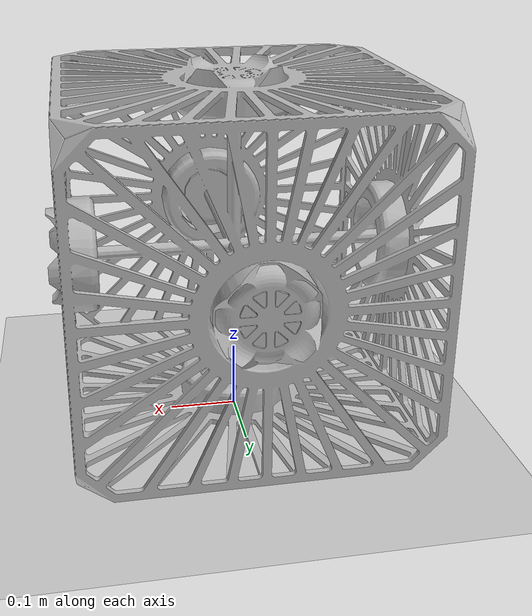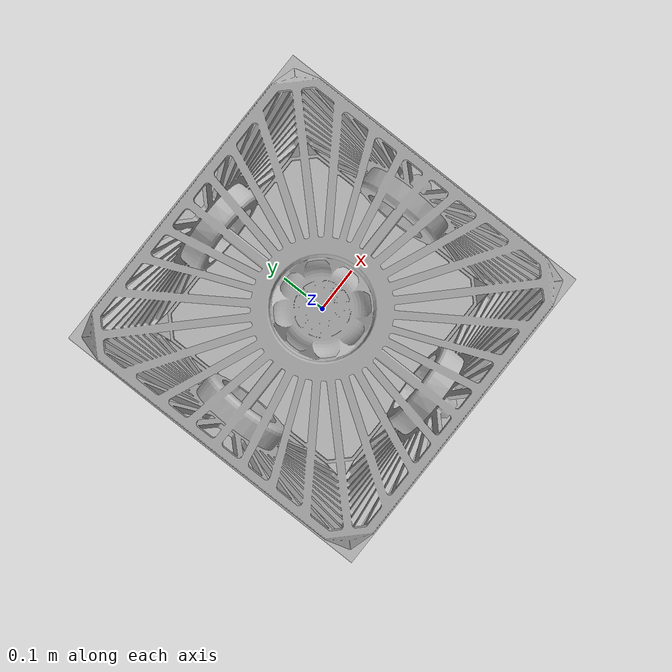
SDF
<sdf version="1.7">
 <world name="default">
  <light name="sun" type="directional">
   <pose>0 0 10 0 -0 0</pose>
   <diffuse>0.8 0.8 0.8 1</diffuse>
   <specular>0.2 0.2 0.2 1</specular>
   <attenuation>
    <range>1000</range>
    <constant>0.9</constant>
    <linear>0.01</linear>
    <quadratic>0.001</quadratic>
   </attenuation>
   <direction>-0.5 0.1 -0.9</direction>
   <spot><inner_angle>0</inner_angle><outer_angle>0</outer_angle><falloff>0</falloff></spot>
  </light>
  <model name="ground_plane">
   <static>1</static>
   <link name="link">
    <collision name="collision">
     <geometry><plane><normal>0 0 1</normal><size>100 100</size></plane></geometry>
     <surface>
      <contact><collide_bitmask>65535</collide_bitmask></contact>
      <friction><ode><mu>100</mu><mu2>50</mu2></ode></friction>
     </surface>
    </collision>
    <visual name="visual">
     <cast_shadows>0</cast_shadows>
     <geometry><plane><normal>0 0 1</normal><size>100 100</size></plane></geometry>
     <material>
      <script><uri>file://media/materials/scripts/gazebo.material</uri><name>Gazebo/Grey</name></script>
     </material>
    </visual>
   </link>
  </model>
  <gravity>0 0 -9.8</gravity>
  <magnetic_field>6e-06 2.3e-05 -4.2e-05</magnetic_field>
  <atmosphere type="adiabatic"/>
  <physics type="ode">
   <max_step_size>0.001</max_step_size>
   <real_time_factor>1</real_time_factor>
   <real_time_update_rate>1000</real_time_update_rate>
  </physics>
  <scene><ambient>0.4 0.4 0.4 1</ambient><background>0.7 0.7 0.7 1</background><shadows>1</shadows></scene>
  <spherical_coordinates>
   <surface_model>EARTH_WGS84</surface_model>
   <latitude_deg>0</latitude_deg>
   <longitude_deg>0</longitude_deg>
   <elevation>0</elevation>
   <heading_deg>0</heading_deg>
  </spherical_coordinates>
  <model name="srsmodule">
   <link name="base_link">
    <inertial>
     <pose>0 0 0.25 0 -0 0</pose>
     <mass>8.2669</mass>
     <inertia>
      <ixx>0.3773</ixx>
      <ixy>1.1963e-09</ixy>
      <ixz>-6.7069e-10</ixz>
      <iyy>0.3773</iyy>
      <iyz>-3.6899e-10</iyz>
      <izz>0.3773</izz>
     </inertia>
    </inertial>
    <collision name="base_link_collision">
     <geometry>
      <mesh><scale>1 1 1</scale><uri>/home/likith/mara/src/srsmodule/meshes/base_link.STL</uri></mesh>
     </geometry>
    </collision>
    <visual name="base_link_visual">
     <geometry>
      <mesh><scale>1 1 1</scale><uri>/home/likith/mara/src/srsmodule/meshes/base_link.STL</uri></mesh>
     </geometry>
    </visual>
   </link>
   <pose>5e-06 -9e-06 0.02 0 1e-05 0.002082</pose>
  </model>
 </world>
</sdf>
